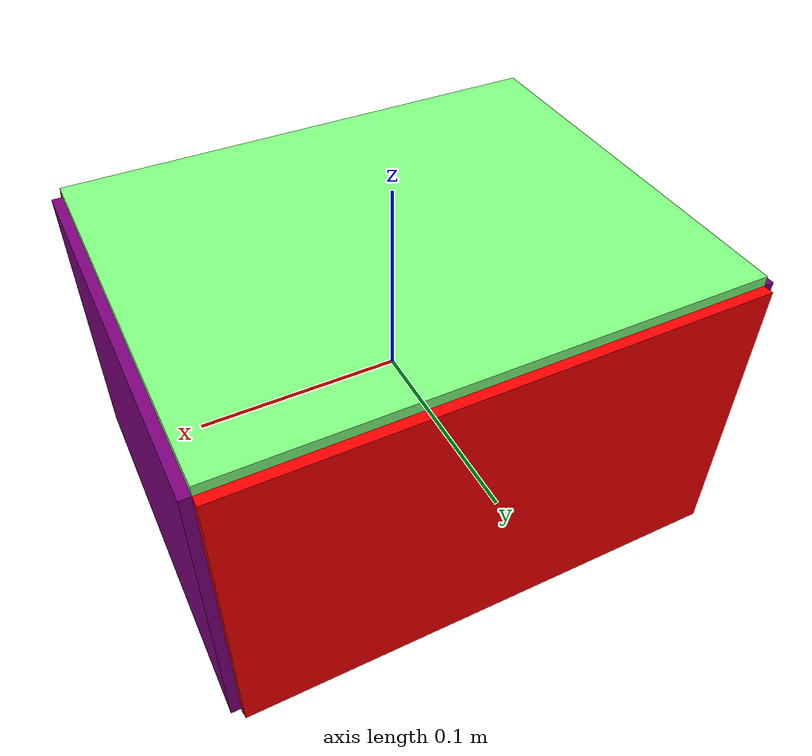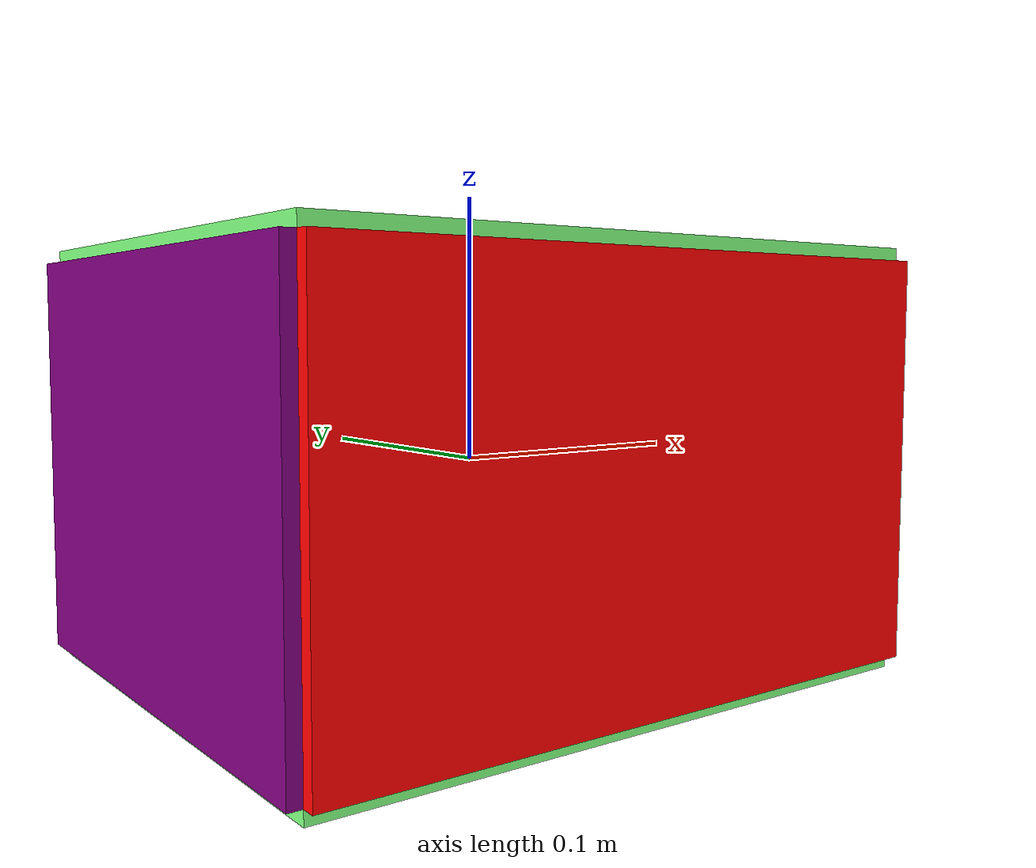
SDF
<?xml version="1.0" ?>
<sdf version="1.6">
    <model name="my_box">
        <static>false</static>
        <link name="link">
            <!-- Top Face -->
            <collision name="top_collision">
                <pose>0 0 0.075 0 0 0</pose>
                <geometry>
                    <box>
                        <size>0.25 0.2 0.01</size>
                    </box>
                </geometry>
                <surface>
                    <friction>
                        <ode>
                            <mu>10.0</mu>
                            <mu2>10.0</mu2>
                        </ode>
                    </friction>
                </surface>
            </collision>
            <visual name="top_visual">
                <pose>0 0 0.075 0 0 0</pose>
                <geometry>
                    <box>
                        <size>0.25 0.2 0.01</size>
                    </box>
                </geometry>
                <material>
                    <ambient>0.5 1 0.5 1</ambient>
                </material>
            </visual>
            <inertial>
                <mass>0.01667</mass>
                <inertia>
                    <ixx>0.000014</ixx>
                    <ixy>0.0</ixy>
                    <ixz>0.0</ixz>
                    <iyy>0.000014</iyy>
                    <iyz>0.0</iyz>
                    <izz>0.000023</izz>
                </inertia>
            </inertial>

            <!-- Bottom Face -->
            <collision name="bottom_collision">
                <pose>0 0 -0.075 0 0 0</pose>
                <geometry>
                    <box>
                        <size>0.25 0.2 0.01</size>
                    </box>
                </geometry>
                <surface>
                    <friction>
                        <ode>
                            <mu>10.0</mu>
                            <mu2>10.0</mu2>
                        </ode>
                    </friction>
                </surface>
            </collision>
            <visual name="bottom_visual">
                <pose>0 0 -0.075 0 0 0</pose>
                <geometry>
                    <box>
                        <size>0.25 0.2 0.01</size>
                    </box>
                </geometry>
                <material>
                    <ambient>0.5 1 0.5 1</ambient>
                </material>
            </visual>
            <inertial>
                <mass>0.01667</mass>
                <inertia>
                    <ixx>0.000014</ixx>
                    <ixy>0.0</ixy>
                    <ixz>0.0</ixz>
                    <iyy>0.000014</iyy>
                    <iyz>0.0</iyz>
                    <izz>0.000023</izz>
                </inertia>
            </inertial>

            <!-- Left Face -->
            <collision name="left_collision">
                <pose>-0.125 0 0 0 1.5708 0</pose>
                <geometry>
                    <box>
                        <size>0.15 0.2 0.01</size>
                    </box>
                </geometry>
                <surface>
                    <friction>
                        <ode>
                            <mu>10.0</mu>
                            <mu2>10.0</mu2>
                        </ode>
                    </friction>
                </surface>
            </collision>
            <visual name="left_visual">
                <pose>-0.125 0 0 0 1.5708 0</pose>
                <geometry>
                    <box>
                        <size>0.15 0.2 0.01</size>
                    </box>
                </geometry>
                <material>
                    <ambient>0.5 0 0.5 1</ambient>
                </material>
            </visual>
            <inertial>
                <mass>0.01667</mass>
                <inertia>
                    <ixx>0.000023</ixx>
                    <ixy>0.0</ixy>
                    <ixz>0.0</ixz>
                    <iyy>0.000014</iyy>
                    <iyz>0.0</iyz>
                    <izz>0.000014</izz>
                </inertia>
            </inertial>

            <!-- Back Face -->
            <collision name="back_collision">
                <pose>0 -0.1 0 0 0 0</pose>
                <geometry>
                    <box>
                        <size>0.25 0.01 0.15</size>
                    </box>
                </geometry>
                <surface>
                    <friction>
                        <ode>
                            <mu>10.0</mu>
                            <mu2>10.0</mu2>
                        </ode>
                    </friction>
                </surface>
            </collision>
            <visual name="back_visual">
                <pose>0 -0.1 0 0 0 0</pose>
                <geometry>
                    <box>
                        <size>0.25 0.01 0.15</size>
                    </box>
                </geometry>
                <material>
                    <ambient>1 0 0 1</ambient>
                </material>
            </visual>

            <!-- Right Face -->
            <collision name="right_collision">
                <pose>0.125 0 0 0 1.5708 0</pose>
                <geometry>
                    <box>
                        <size>0.15 0.2 0.01</size>
                    </box>
                </geometry>
                <surface>
                    <friction>
                        <ode>
                            <mu>10.0</mu>
                            <mu2>10.0</mu2>
                        </ode>
                    </friction>
                </surface>
            </collision>
            <visual name="right_visual">
                <pose>0.125 0 0 0 1.5708 0</pose>
                <geometry>
                    <box>
                        <size>0.15 0.2 0.01</size>
                    </box>
                </geometry>
                <material>
                    <ambient>0.5 0 0.5 1</ambient> <!-- Purple color -->
                </material>
            </visual>

            <!-- Front Face -->
            <collision name="front_collision">
                <pose>0 0.1 0 0 0 0</pose>
                <geometry>
                    <box>
                        <size>0.25 0.01 0.15</size>
                    </box>
                </geometry>
                <surface>
                    <friction>
                        <ode>
                            <mu>10.0</mu>
                            <mu2>10.0</mu2>
                        </ode>
                    </friction>
                </surface>
            </collision>
            <visual name="front_visual">
                <pose>0 0.1 0 0 0 0</pose>
                <geometry>
                    <box>
                        <size>0.25 0.01 0.15</size>
                    </box>
                </geometry>
                <material>
                    <ambient>1 0 0 1</ambient> <!-- Red color -->
                </material>
            </visual>

        </link>
    </model>
</sdf>
